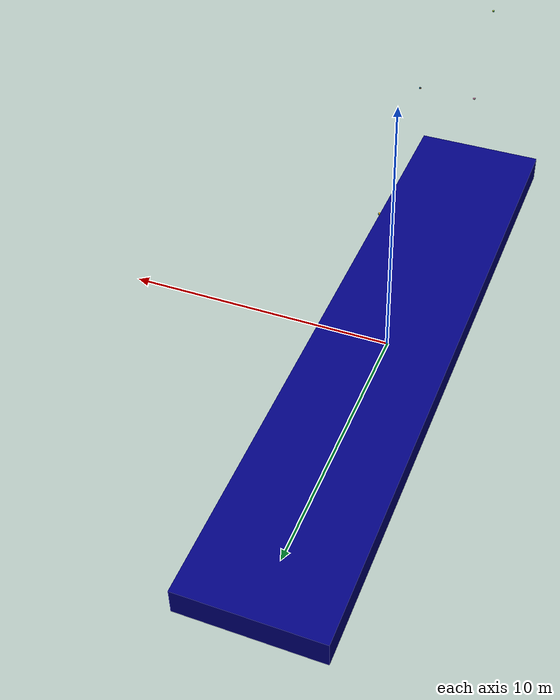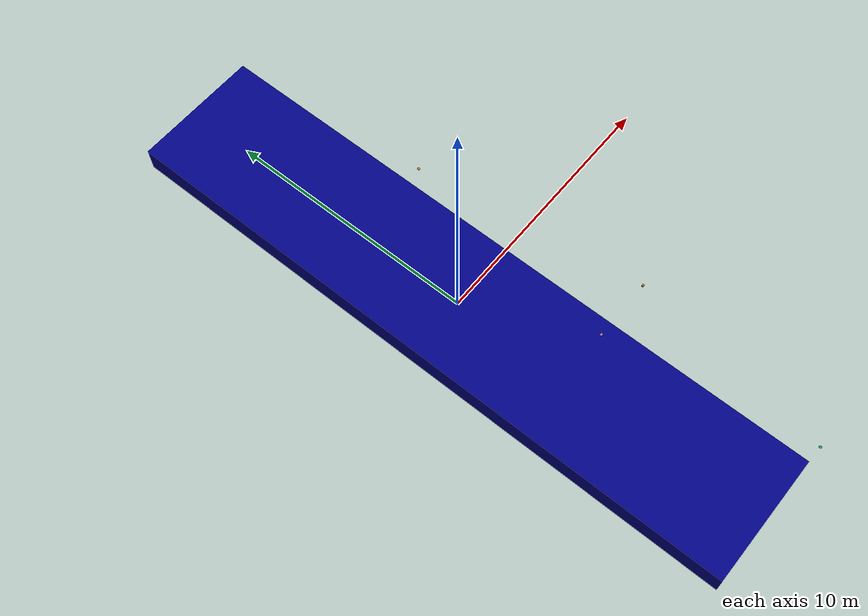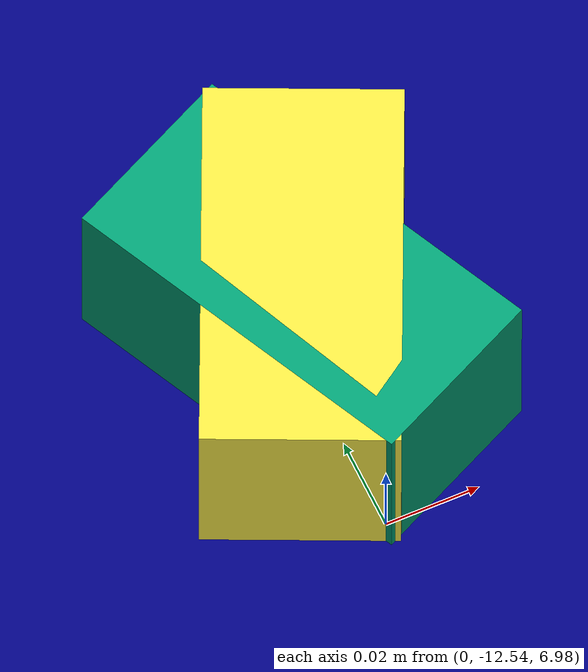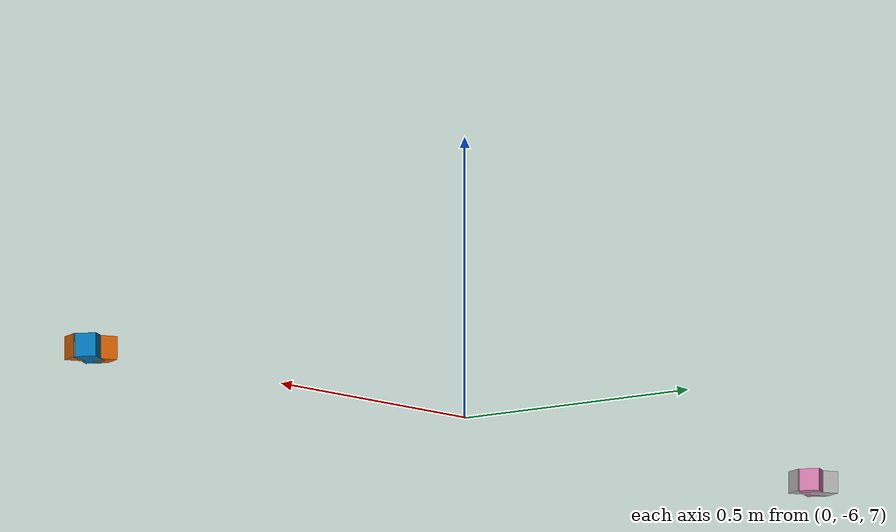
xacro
<?xml version="1.0"?>

<robot name="boat_sim" xmlns:xacro="http://ros.org/wiki/xacro">
  <xacro:include filename="$(find boat_simulator)/urdf/boat_sensor.xacro"/>

  <link name="base_link">
    <inertial>
      <mass value="125.0"/>
      <origin xyz="0 0 0"/>
      <inertia ixx="6520" ixy="0.0" ixz="0.0"
               iyy="6770" iyz="0.0" izz="270"/>
    </inertial>

    <visual>
      <origin xyz="0 0 0" rpy="0 0 0"/>
      <geometry>
          <box size="${5} ${25} ${1}" />
      </geometry>
      <material name="ChassisRed">
        <color rgba="0.0 0.0 0.5 1.0"/>
      </material>
    </visual>

    <collision>
      <origin xyz="0 0 0" rpy="0 0 0"/>
      <geometry>
        <box size="5.1 25.1 0.1"/>
      </geometry>
    </collision>
  </link>
  <gazebo reference="base_link">
    <material value="Gazebo/Red"/>
  </gazebo>

  <gazebo>
    <!-- Fake localization plugin -->
    <plugin name="ground_truth_odometry" filename="libgazebo_ros_p3d.so">
      <alwaysOn>true</alwaysOn>
      <updateRate>100.0</updateRate>
      <bodyName>base_link</bodyName>
      <topicName>base_pose_ground_truth</topicName>
      <gaussianNoise>0.5</gaussianNoise>
      <frameName>map</frameName>-->
      <!-- initialize odometry for fake localization -->
      <xyzOffsets>0 0 0</xyzOffsets>
      <rpyOffsets>0 0 0</rpyOffsets>
    </plugin>
  </gazebo>

</robot>

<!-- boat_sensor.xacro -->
<robot xmlns:xacro="http://ros.org/wiki/xacro">

    <!-- camera 1 -->
    <link name="camera_link_1">
        <collision>
            <origin xyz="0 0 0" rpy="0 0 0"/>
            <geometry>
                <box size="0.08 0.04 0.04"/>
            </geometry>
        </collision>
        <visual>
            <origin xyz="0 0 0" rpy="0 0 0"/>
            <geometry>
                <box size="0.08 0.04 0.04"/>
            </geometry>
        </visual>
        <inertial>
            <mass value="1e-5"/>
            <origin xyz="0 0 0" rpy="0 0 0"/>
            <inertia ixx="1e-6" ixy="0" ixz="0" iyy="1e-6" iyz="0" izz="1e-6"/>
        </inertial>
    </link>

    <!-- camera 1 -->
    <link name="camera_link_2">
        <collision>
            <origin xyz="0 0 0" rpy="0 0 0"/>
            <geometry>
                <box size="0.08 0.04 0.04"/>
            </geometry>
        </collision>
        <visual>
            <origin xyz="0 0 0" rpy="0 0 0"/>
            <geometry>
                <box size="0.08 0.04 0.04"/>
            </geometry>
        </visual>
        <inertial>
            <mass value="1e-5"/>
            <origin xyz="0 0 0" rpy="0 0 0"/>
            <inertia ixx="1e-6" ixy="0" ixz="0" iyy="1e-6" iyz="0" izz="1e-6"/>
        </inertial>
    </link>
    <!-- camera 1 -->
    <link name="camera_link_3">
        <collision>
            <origin xyz="0 0 0" rpy="0 0 0"/>
            <geometry>
                <box size="0.08 0.04 0.04"/>
            </geometry>
        </collision>
        <visual>
            <origin xyz="0 0 0" rpy="0 0 0"/>
            <geometry>
                <box size="0.08 0.04 0.04"/>
            </geometry>
        </visual>
        <inertial>
            <mass value="1e-5"/>
            <origin xyz="0 0 0" rpy="0 0 0"/>
            <inertia ixx="1e-6" ixy="0" ixz="0" iyy="1e-6" iyz="0" izz="1e-6"/>
        </inertial>
    </link>
    <!-- camera 1 -->
    <link name="camera_link_4">
        <collision>
            <origin xyz="0 0 0" rpy="0 0 0"/>
            <geometry>
                <box size="0.08 0.04 0.04"/>
            </geometry>
        </collision>
        <visual>
            <origin xyz="0 0 0" rpy="0 0 0"/>
            <geometry>
                <box size="0.08 0.04 0.04"/>
            </geometry>
        </visual>
        <inertial>
            <mass value="1e-5"/>
            <origin xyz="0 0 0" rpy="0 0 0"/>
            <inertia ixx="1e-6" ixy="0" ixz="0" iyy="1e-6" iyz="0" izz="1e-6"/>
        </inertial>
    </link>
    <!-- camera 1 -->
    <link name="camera_link_5">
        <collision>
            <origin xyz="0 0 0" rpy="0 0 0"/>
            <geometry>
                <box size="0.08 0.04 0.04"/>
            </geometry>
        </collision>
        <visual>
            <origin xyz="0 0 0" rpy="0 0 0"/>
            <geometry>
                <box size="0.08 0.04 0.04"/>
            </geometry>
        </visual>
        <inertial>
            <mass value="1e-5"/>
            <origin xyz="0 0 0" rpy="0 0 0"/>
            <inertia ixx="1e-6" ixy="0" ixz="0" iyy="1e-6" iyz="0" izz="1e-6"/>
        </inertial>
    </link>
    <!-- camera 1 -->
    <link name="camera_link_6">
        <collision>
            <origin xyz="0 0 0" rpy="0 0 0"/>
            <geometry>
                <box size="0.08 0.04 0.04"/>
            </geometry>
        </collision>
        <visual>
            <origin xyz="0 0 0" rpy="0 0 0"/>
            <geometry>
                <box size="0.08 0.04 0.04"/>
            </geometry>
        </visual>
        <inertial>
            <mass value="1e-5"/>
            <origin xyz="0 0 0" rpy="0 0 0"/>
            <inertia ixx="1e-6" ixy="0" ixz="0" iyy="1e-6" iyz="0" izz="1e-6"/>
        </inertial>
    </link>
    <!-- camera 1 -->
    <link name="camera_link_7">
        <collision>
            <origin xyz="0 0 0" rpy="0 0 0"/>
            <geometry>
                <box size="0.08 0.04 0.04"/>
            </geometry>
        </collision>
        <visual>
            <origin xyz="0 0 0" rpy="0 0 0"/>
            <geometry>
                <box size="0.08 0.04 0.04"/>
            </geometry>
        </visual>
        <inertial>
            <mass value="1e-5"/>
            <origin xyz="0 0 0" rpy="0 0 0"/>
            <inertia ixx="1e-6" ixy="0" ixz="0" iyy="1e-6" iyz="0" izz="1e-6"/>
        </inertial>
    </link>
    <!-- camera 1 -->
    <link name="camera_link_8">
        <collision>
            <origin xyz="0 0 0" rpy="0 0 0"/>
            <geometry>
                <box size="0.08 0.04 0.04"/>
            </geometry>
        </collision>
        <visual>
            <origin xyz="0 0 0" rpy="0 0 0"/>
            <geometry>
                <box size="0.08 0.04 0.04"/>
            </geometry>
        </visual>
        <inertial>
            <mass value="1e-5"/>
            <origin xyz="0 0 0" rpy="0 0 0"/>
            <inertia ixx="1e-6" ixy="0" ixz="0" iyy="1e-6" iyz="0" izz="1e-6"/>
        </inertial>
    </link>

    <joint name="camera_joint_1" type="fixed">
        <axis xyz="0 0 1"/>
        <origin xyz="0 1.5 7" rpy="0 0 2.01"/>
        <parent link="base_link"/>
        <child link="camera_link_1"/>
    </joint>
    <joint name="camera_joint_2" type="fixed">
        <axis xyz="0 0 1"/>
        <origin xyz="0 1.5 7" rpy="0 0 1.13"/>
        <parent link="base_link"/>
        <child link="camera_link_2"/>
    </joint>
    <joint name="camera_joint_3" type="fixed">
        <axis xyz="0 0 1"/>
        <origin xyz="0 -12.5 7" rpy="0 0 -1.13"/>
        <parent link="base_link"/>
        <child link="camera_link_3"/>
    </joint>
    <joint name="camera_joint_4" type="fixed">
        <axis xyz="0 0 1"/>
        <origin xyz="0 -12.5 7" rpy="0 0 -2.01"/>
        <parent link="base_link"/>
        <child link="camera_link_4"/>
    </joint>

    <joint name="camera_joint_5" type="fixed">
        <axis xyz="0 0 1"/>
        <origin xyz="1 -6 7" rpy="0 0 +0.44"/>
        <parent link="base_link"/>
        <child link="camera_link_5"/>
    </joint>
    <joint name="camera_joint_6" type="fixed">
        <axis xyz="0 0 1"/>
        <origin xyz="1 -6 7" rpy="0 0 -0.44"/>
        <parent link="base_link"/>
        <child link="camera_link_6"/>
    </joint>
    <joint name="camera_joint_7" type="fixed">
        <axis xyz="0 0 1"/>
        <origin xyz="-1 -6 7" rpy="0 0 3.58"/>
        <parent link="base_link"/>
        <child link="camera_link_7"/>
    </joint>
    <joint name="camera_joint_8" type="fixed">
        <axis xyz="0 0 1"/>
        <origin xyz="-1 -6 7" rpy="0 0 2.7"/>
        <parent link="base_link"/>
        <child link="camera_link_8"/>
    </joint>

    <gazebo reference="camera_link_1">
        <sensor type="camera" name="camera_1">
            <update_rate>20.0</update_rate>
            <camera name="head">
                <horizontal_fov>1.22</horizontal_fov>
                <image>
                    <width>1920</width>
                    <height>1080</height>
                    <format>R8G8B8</format>
                </image>
                <clip>
                    <near>0.02</near>
                    <far>300</far>
                </clip>
                <noise>
                    <type>gaussian</type>
                    <mean>0.0</mean>
                    <stddev>0.007</stddev>
                </noise>
            </camera>
            <plugin name="camera_controller" filename="libgazebo_ros_camera.so">
                <alwaysOn>true</alwaysOn>
                <updateRate>0.0</updateRate>
                <cameraName>camera_1</cameraName>
                <imageTopicName>camera_1_raw</imageTopicName>
                <cameraInfoTopicName>camera_1_info</cameraInfoTopicName>
                <frameName>camera_link_1</frameName>
                <hackBaseline>0.07</hackBaseline>
                <distortionK1>0.0</distortionK1>
                <distortionK2>0.0</distortionK2>
                <distortionK3>0.0</distortionK3>
                <distortionT1>0.0</distortionT1>
                <distortionT2>0.0</distortionT2>
            </plugin>
        </sensor>
    </gazebo>
    <gazebo reference="camera_link_2">
        <sensor type="camera" name="camera_2">
            <update_rate>20.0</update_rate>
            <camera name="head">
                <horizontal_fov>1.22</horizontal_fov>
                <image>
                    <width>1920</width>
                    <height>1080</height>
                    <format>R8G8B8</format>
                </image>
                <clip>
                    <near>0.02</near>
                    <far>300</far>
                </clip>
                <noise>
                    <type>gaussian</type>
                    <mean>0.0</mean>
                    <stddev>0.007</stddev>
                </noise>
            </camera>
            <plugin name="camera_controller" filename="libgazebo_ros_camera.so">
                <alwaysOn>true</alwaysOn>
                <updateRate>0.0</updateRate>
                <cameraName>camera_2</cameraName>
                <imageTopicName>camera_2_raw</imageTopicName>
                <cameraInfoTopicName>camera_2_info</cameraInfoTopicName>
                <frameName>camera_link_2</frameName>
                <hackBaseline>0.07</hackBaseline>
                <distortionK1>0.0</distortionK1>
                <distortionK2>0.0</distortionK2>
                <distortionK3>0.0</distortionK3>
                <distortionT1>0.0</distortionT1>
                <distortionT2>0.0</distortionT2>
            </plugin>
        </sensor>
    </gazebo>
    <gazebo reference="camera_link_3">
        <sensor type="camera" name="camera_3">
            <update_rate>20.0</update_rate>
            <camera name="head">
                <horizontal_fov>1.22</horizontal_fov>
                <image>
                    <width>1920</width>
                    <height>1080</height>
                    <format>R8G8B8</format>
                </image>
                <clip>
                    <near>0.02</near>
                    <far>300</far>
                </clip>
                <noise>
                    <type>gaussian</type>
                    <mean>0.0</mean>
                    <stddev>0.007</stddev>
                </noise>
            </camera>
            <plugin name="camera_controller" filename="libgazebo_ros_camera.so">
                <alwaysOn>true</alwaysOn>
                <updateRate>0.0</updateRate>
                <cameraName>camera_3</cameraName>
                <imageTopicName>camera_3_raw</imageTopicName>
                <cameraInfoTopicName>camera_3_info</cameraInfoTopicName>
                <frameName>camera_link_3</frameName>
                <hackBaseline>0.07</hackBaseline>
                <distortionK1>0.0</distortionK1>
                <distortionK2>0.0</distortionK2>
                <distortionK3>0.0</distortionK3>
                <distortionT1>0.0</distortionT1>
                <distortionT2>0.0</distortionT2>
            </plugin>
        </sensor>
    </gazebo>
    <gazebo reference="camera_link_4">
        <sensor type="camera" name="camera_4">
            <update_rate>20.0</update_rate>
            <camera name="head">
                <horizontal_fov>1.22</horizontal_fov>
                <image>
                    <width>1920</width>
                    <height>1080</height>
                    <format>R8G8B8</format>
                </image>
                <clip>
                    <near>0.02</near>
                    <far>300</far>
                </clip>
                <noise>
                    <type>gaussian</type>
                    <mean>0.0</mean>
                    <stddev>0.007</stddev>
                </noise>
            </camera>
            <plugin name="camera_controller" filename="libgazebo_ros_camera.so">
                <alwaysOn>true</alwaysOn>
                <updateRate>0.0</updateRate>
                <cameraName>camera_4</cameraName>
                <imageTopicName>camera_4_raw</imageTopicName>
                <cameraInfoTopicName>camera_4_info</cameraInfoTopicName>
                <frameName>camera_link_4</frameName>
                <hackBaseline>0.07</hackBaseline>
                <distortionK1>0.0</distortionK1>
                <distortionK2>0.0</distortionK2>
                <distortionK3>0.0</distortionK3>
                <distortionT1>0.0</distortionT1>
                <distortionT2>0.0</distortionT2>
            </plugin>
        </sensor>
    </gazebo>
    <gazebo reference="camera_link_5">
        <sensor type="camera" name="camera_5">
            <update_rate>20.0</update_rate>
            <camera name="head">
                <horizontal_fov>1.22</horizontal_fov>
                <image>
                    <width>1920</width>
                    <height>1080</height>
                    <format>R8G8B8</format>
                </image>
                <clip>
                    <near>0.02</near>
                    <far>300</far>
                </clip>
                <noise>
                    <type>gaussian</type>
                    <mean>0.0</mean>
                    <stddev>0.007</stddev>
                </noise>
            </camera>
            <plugin name="camera_controller" filename="libgazebo_ros_camera.so">
                <alwaysOn>true</alwaysOn>
                <updateRate>0.0</updateRate>
                <cameraName>camera_5</cameraName>
                <imageTopicName>camera_5_raw</imageTopicName>
                <cameraInfoTopicName>camera_5_info</cameraInfoTopicName>
                <frameName>camera_link_5</frameName>
                <hackBaseline>0.07</hackBaseline>
                <distortionK1>0.0</distortionK1>
                <distortionK2>0.0</distortionK2>
                <distortionK3>0.0</distortionK3>
                <distortionT1>0.0</distortionT1>
                <distortionT2>0.0</distortionT2>
            </plugin>
        </sensor>
    </gazebo>
    <gazebo reference="camera_link_6">
        <sensor type="camera" name="camera_6">
            <update_rate>20.0</update_rate>
            <camera name="head">
                <horizontal_fov>1.22</horizontal_fov>
                <image>
                    <width>1920</width>
                    <height>1080</height>
                    <format>R8G8B8</format>
                </image>
                <clip>
                    <near>0.02</near>
                    <far>300</far>
                </clip>
                <noise>
                    <type>gaussian</type>
                    <mean>0.0</mean>
                    <stddev>0.007</stddev>
                </noise>
            </camera>
            <plugin name="camera_controller" filename="libgazebo_ros_camera.so">
                <alwaysOn>true</alwaysOn>
                <updateRate>0.0</updateRate>
                <cameraName>camera_6</cameraName>
                <imageTopicName>camera_6_raw</imageTopicName>
                <cameraInfoTopicName>camera_6_info</cameraInfoTopicName>
                <frameName>camera_link_6</frameName>
                <hackBaseline>0.07</hackBaseline>
                <distortionK1>0.0</distortionK1>
                <distortionK2>0.0</distortionK2>
                <distortionK3>0.0</distortionK3>
                <distortionT1>0.0</distortionT1>
                <distortionT2>0.0</distortionT2>
            </plugin>
        </sensor>
    </gazebo>
    <gazebo reference="camera_link_7">
        <sensor type="camera" name="camera_7">
            <update_rate>20.0</update_rate>
            <camera name="head">
                <horizontal_fov>1.22</horizontal_fov>
                <image>
                    <width>1920</width>
                    <height>1080</height>
                    <format>R8G8B8</format>
                </image>
                <clip>
                    <near>0.02</near>
                    <far>300</far>
                </clip>
                <noise>
                    <type>gaussian</type>
                    <mean>0.0</mean>
                    <stddev>0.007</stddev>
                </noise>
            </camera>
            <plugin name="camera_controller" filename="libgazebo_ros_camera.so">
                <alwaysOn>true</alwaysOn>
                <updateRate>0.0</updateRate>
                <cameraName>camera_7</cameraName>
                <imageTopicName>camera_7_raw</imageTopicName>
                <cameraInfoTopicName>camera_7_info</cameraInfoTopicName>
                <frameName>camera_link_7</frameName>
                <hackBaseline>0.07</hackBaseline>
                <distortionK1>0.0</distortionK1>
                <distortionK2>0.0</distortionK2>
                <distortionK3>0.0</distortionK3>
                <distortionT1>0.0</distortionT1>
                <distortionT2>0.0</distortionT2>
            </plugin>
        </sensor>
    </gazebo>
    <gazebo reference="camera_link_8">
        <sensor type="camera" name="camera_8">
            <update_rate>20.0</update_rate>
            <camera name="head">
                <horizontal_fov>1.22</horizontal_fov>
                <image>
                    <width>1920</width>
                    <height>1080</height>
                    <format>R8G8B8</format>
                </image>
                <clip>
                    <near>0.02</near>
                    <far>300</far>
                </clip>
                <noise>
                    <type>gaussian</type>
                    <mean>0.0</mean>
                    <stddev>0.007</stddev>
                </noise>
            </camera>
            <plugin name="camera_controller" filename="libgazebo_ros_camera.so">
                <alwaysOn>true</alwaysOn>
                <updateRate>0.0</updateRate>
                <cameraName>camera_8</cameraName>
                <imageTopicName>camera_8_raw</imageTopicName>
                <cameraInfoTopicName>camera_8_info</cameraInfoTopicName>
                <frameName>camera_link_8</frameName>
                <hackBaseline>0.07</hackBaseline>
                <distortionK1>0.0</distortionK1>
                <distortionK2>0.0</distortionK2>
                <distortionK3>0.0</distortionK3>
                <distortionT1>0.0</distortionT1>
                <distortionT2>0.0</distortionT2>
            </plugin>
        </sensor>
    </gazebo>

</robot>
